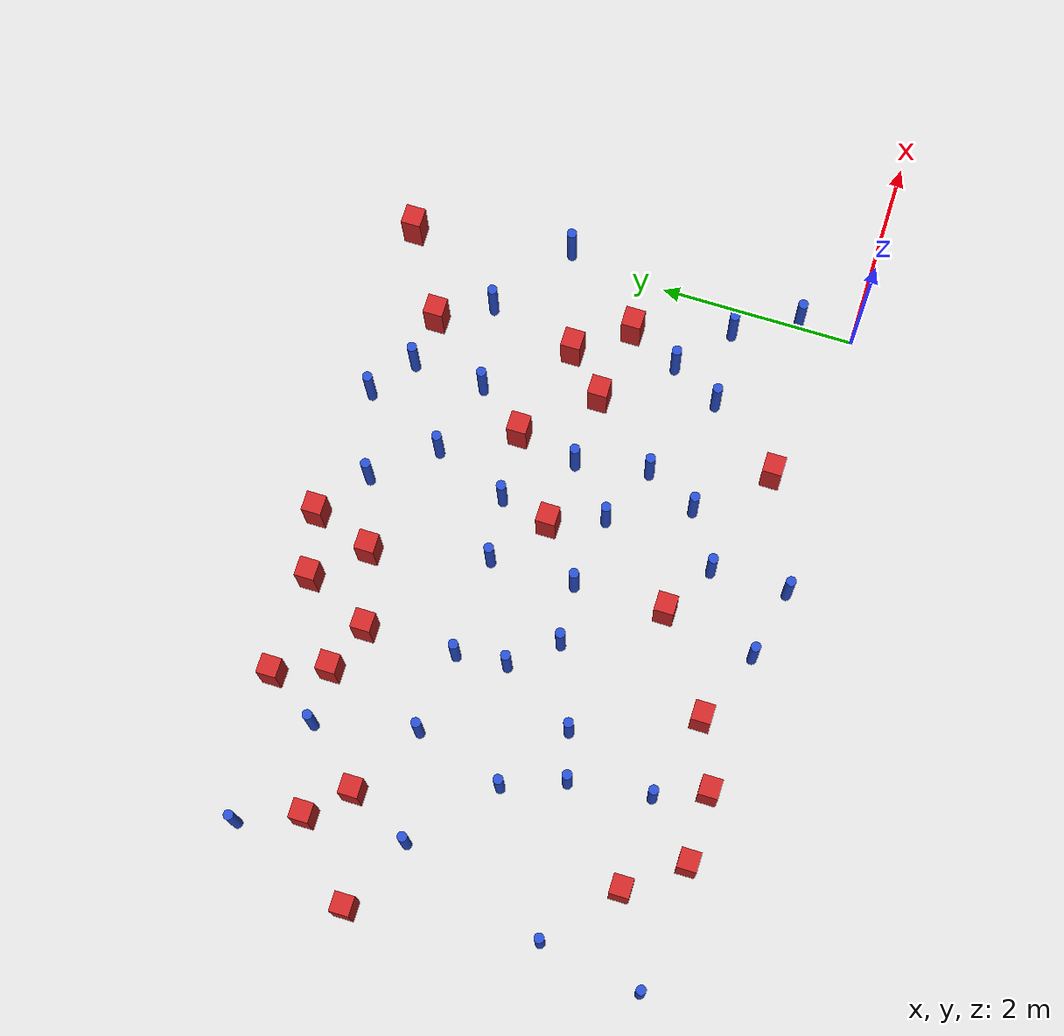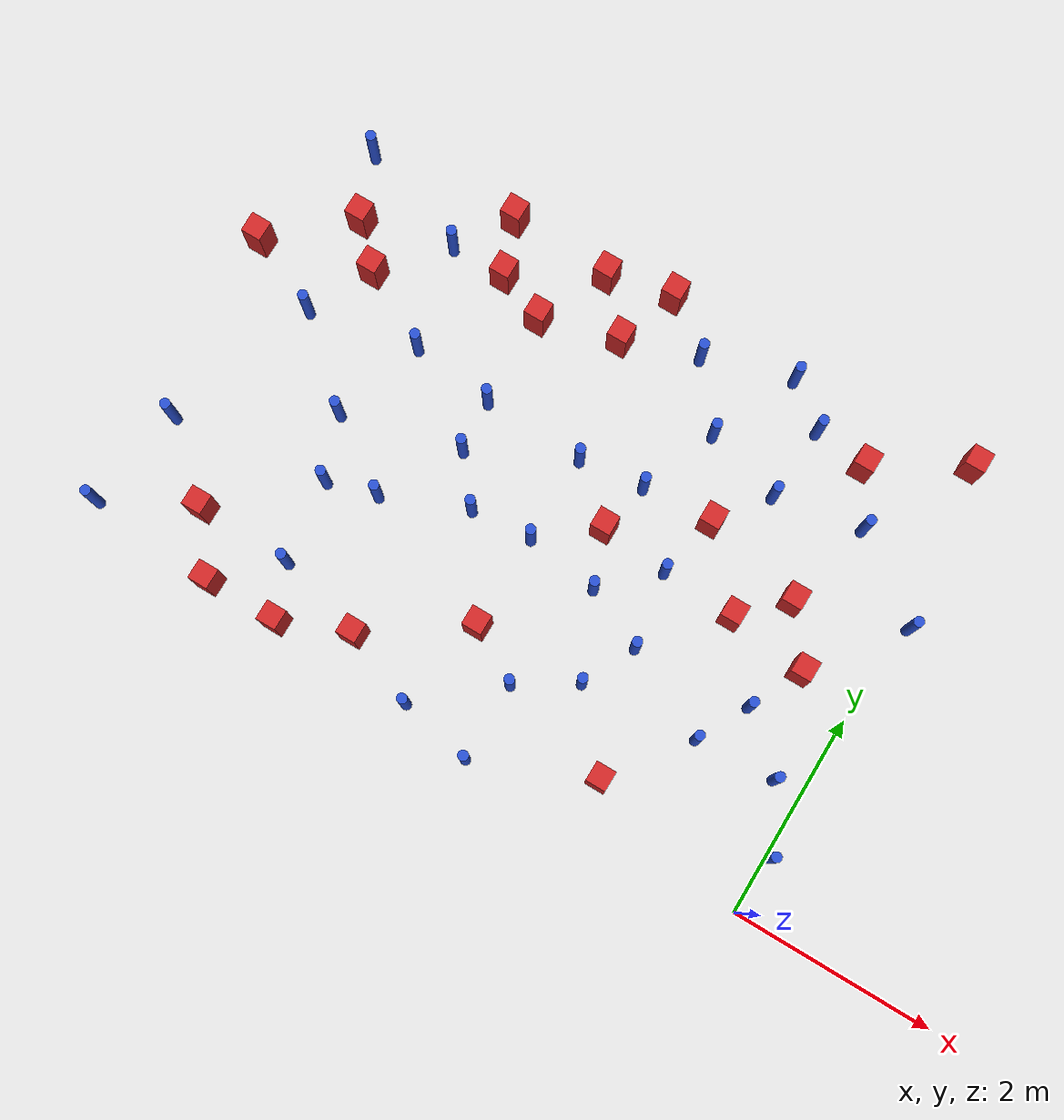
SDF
<sdf version="1.6">
 <model name="dense_95">
  <model name="pole_obstacle2">
   <static>true</static>
   <pose>-3.29904174645 2.82377356192 -9.47619616065e-06 5.49618799737e-07 2.36310414051e-07 -1.55090534807e-07</pose>
   <link name="link">
    <pose>0 0 0.3 0 -0 0</pose>
    <inertial>
     <mass>1</mass>
     <inertia><ixx>0.145833</ixx><ixy>0</ixy><ixz>0</ixz><iyy>0.145833</iyy><iyz>0</iyz><izz>0.125</izz></inertia>
    </inertial>
    <collision name="collision">
     <geometry><cylinder><radius>0.05</radius><length>.6</length></cylinder></geometry>
    </collision>
    <visual name="visual">
     <geometry><cylinder><radius>0.05</radius><length>.6</length></cylinder></geometry>
     <material>
      <script><name>Gazebo/Blue</name><uri>file://media/materials/scripts/gazebo.material</uri></script>
     </material>
    </visual>
   </link>
  </model>
  <model name="pole_obstacle6">
   <static>true</static>
   <pose>0.0274219463707 0.570744729597 -9.47619616065e-06 5.49618799737e-07 2.36310414052e-07 -1.55090534805e-07</pose>
   <link name="link">
    <pose>0 0 0.3 0 -0 0</pose>
    <inertial>
     <mass>1</mass>
     <inertia><ixx>0.145833</ixx><ixy>0</ixy><ixz>0</ixz><iyy>0.145833</iyy><iyz>0</iyz><izz>0.125</izz></inertia>
    </inertial>
    <collision name="collision">
     <geometry><cylinder><radius>0.05</radius><length>.6</length></cylinder></geometry>
    </collision>
    <visual name="visual">
     <geometry><cylinder><radius>0.05</radius><length>.6</length></cylinder></geometry>
     <material>
      <script><name>Gazebo/Blue</name><uri>file://media/materials/scripts/gazebo.material</uri></script>
     </material>
    </visual>
   </link>
  </model>
  <model name="square_post_obstacle2">
   <static>true</static>
   <pose>-0.159925843453 4.62938258808 -6.11067671241e-07 -5.50515727128e-06 -8.79689657224e-07 2.37013304536e-05</pose>
   <link name="link">
    <pose>0 0 0.25 0 -0 0</pose>
    <inertial>
     <mass>100</mass>
     <inertia>
      <ixx>0.166667</ixx>
      <ixy>0</ixy>
      <ixz>0</ixz>
      <iyy>0.166667</iyy>
      <iyz>0</iyz>
      <izz>0.166667</izz>
     </inertia>
    </inertial>
    <collision name="collision"><geometry><box><size>.2 .2 .5</size></box></geometry></collision>
    <visual name="visual">
     <geometry><box><size>.2 .2 .5</size></box></geometry>
     <material>
      <script><name>Gazebo/Red</name><uri>file://media/materials/scripts/gazebo.material</uri></script>
     </material>
    </visual>
   </link>
  </model>
  <model name="square_post_obstacle5">
   <static>true</static>
   <pose>-3.9854556067 4.46820223153 -6.11067671241e-07 -5.50515727128e-06 -8.79689657224e-07 2.37013304536e-05</pose>
   <link name="link">
    <pose>0 0 0.25 0 -0 0</pose>
    <inertial>
     <mass>100</mass>
     <inertia>
      <ixx>0.166667</ixx>
      <ixy>0</ixy>
      <ixz>0</ixz>
      <iyy>0.166667</iyy>
      <iyz>0</iyz>
      <izz>0.166667</izz>
     </inertia>
    </inertial>
    <collision name="collision"><geometry><box><size>.2 .2 .5</size></box></geometry></collision>
    <visual name="visual">
     <geometry><box><size>.2 .2 .5</size></box></geometry>
     <material>
      <script><name>Gazebo/Red</name><uri>file://media/materials/scripts/gazebo.material</uri></script>
     </material>
    </visual>
   </link>
  </model>
  <model name="pole_obstacle14">
   <static>true</static>
   <pose>-2.76724626899 0.704654740037 -9.47619616065e-06 5.49618799738e-07 2.36310414075e-07 -1.55090534793e-07</pose>
   <link name="link">
    <pose>0 0 0.3 0 -0 0</pose>
    <inertial>
     <mass>1</mass>
     <inertia><ixx>0.145833</ixx><ixy>0</ixy><ixz>0</ixz><iyy>0.145833</iyy><iyz>0</iyz><izz>0.125</izz></inertia>
    </inertial>
    <collision name="collision">
     <geometry><cylinder><radius>0.05</radius><length>.6</length></cylinder></geometry>
    </collision>
    <visual name="visual">
     <geometry><cylinder><radius>0.05</radius><length>.6</length></cylinder></geometry>
     <material>
      <script><name>Gazebo/Blue</name><uri>file://media/materials/scripts/gazebo.material</uri></script>
     </material>
    </visual>
   </link>
  </model>
  <model name="pole_obstacle23">
   <static>true</static>
   <pose>-1.97185046986 4.5103314943 -9.47619616065e-06 5.49618799737e-07 2.36310414064e-07 -1.55090534797e-07</pose>
   <link name="link">
    <pose>0 0 0.3 0 -0 0</pose>
    <inertial>
     <mass>1</mass>
     <inertia><ixx>0.145833</ixx><ixy>0</ixy><ixz>0</ixz><iyy>0.145833</iyy><iyz>0</iyz><izz>0.125</izz></inertia>
    </inertial>
    <collision name="collision">
     <geometry><cylinder><radius>0.05</radius><length>.6</length></cylinder></geometry>
    </collision>
    <visual name="visual">
     <geometry><cylinder><radius>0.05</radius><length>.6</length></cylinder></geometry>
     <material>
      <script><name>Gazebo/Blue</name><uri>file://media/materials/scripts/gazebo.material</uri></script>
     </material>
    </visual>
   </link>
  </model>
  <model name="square_post_obstacle21">
   <static>true</static>
   <pose>-4.89767449202 0.111727149782 -6.11067671241e-07 -5.50515727128e-06 -8.79689657224e-07 2.37013304536e-05</pose>
   <link name="link">
    <pose>0 0 0.25 0 -0 0</pose>
    <inertial>
     <mass>100</mass>
     <inertia>
      <ixx>0.166667</ixx>
      <ixy>0</ixy>
      <ixz>0</ixz>
      <iyy>0.166667</iyy>
      <iyz>0</iyz>
      <izz>0.166667</izz>
     </inertia>
    </inertial>
    <collision name="collision"><geometry><box><size>.2 .2 .5</size></box></geometry></collision>
    <visual name="visual">
     <geometry><box><size>.2 .2 .5</size></box></geometry>
     <material>
      <script><name>Gazebo/Red</name><uri>file://media/materials/scripts/gazebo.material</uri></script>
     </material>
    </visual>
   </link>
  </model>
  <model name="square_post_obstacle25">
   <static>true</static>
   <pose>-6.24185374279 3.75734266402 -6.11067671241e-07 -5.50515727128e-06 -8.79689657224e-07 2.37013304536e-05</pose>
   <link name="link">
    <pose>0 0 0.25 0 -0 0</pose>
    <inertial>
     <mass>100</mass>
     <inertia>
      <ixx>0.166667</ixx>
      <ixy>0</ixy>
      <ixz>0</ixz>
      <iyy>0.166667</iyy>
      <iyz>0</iyz>
      <izz>0.166667</izz>
     </inertia>
    </inertial>
    <collision name="collision"><geometry><box><size>.2 .2 .5</size></box></geometry></collision>
    <visual name="visual">
     <geometry><box><size>.2 .2 .5</size></box></geometry>
     <material>
      <script><name>Gazebo/Red</name><uri>file://media/materials/scripts/gazebo.material</uri></script>
     </material>
    </visual>
   </link>
  </model>
  <model name="square_post_obstacle29">
   <static>true</static>
   <pose>-3.33987273103 4.61689935057 -6.11067671241e-07 -5.50515727128e-06 -8.79689657224e-07 2.37013304536e-05</pose>
   <link name="link">
    <pose>0 0 0.25 0 -0 0</pose>
    <inertial>
     <mass>100</mass>
     <inertia>
      <ixx>0.166667</ixx>
      <ixy>0</ixy>
      <ixz>0</ixz>
      <iyy>0.166667</iyy>
      <iyz>0</iyz>
      <izz>0.166667</izz>
     </inertia>
    </inertial>
    <collision name="collision"><geometry><box><size>.2 .2 .5</size></box></geometry></collision>
    <visual name="visual">
     <geometry><box><size>.2 .2 .5</size></box></geometry>
     <material>
      <script><name>Gazebo/Red</name><uri>file://media/materials/scripts/gazebo.material</uri></script>
     </material>
    </visual>
   </link>
  </model>
  <model name="square_post_obstacle30">
   <static>true</static>
   <pose>-0.958676364007 2.68689497019 -6.11067671241e-07 -5.50515727128e-06 -8.79689657224e-07 2.37013304536e-05</pose>
   <link name="link">
    <pose>0 0 0.25 0 -0 0</pose>
    <inertial>
     <mass>100</mass>
     <inertia>
      <ixx>0.166667</ixx>
      <ixy>0</ixy>
      <ixz>0</ixz>
      <iyy>0.166667</iyy>
      <iyz>0</iyz>
      <izz>0.166667</izz>
     </inertia>
    </inertial>
    <collision name="collision"><geometry><box><size>.2 .2 .5</size></box></geometry></collision>
    <visual name="visual">
     <geometry><box><size>.2 .2 .5</size></box></geometry>
     <material>
      <script><name>Gazebo/Red</name><uri>file://media/materials/scripts/gazebo.material</uri></script>
     </material>
    </visual>
   </link>
  </model>
  <model name="square_post_obstacle31">
   <static>true</static>
   <pose>-0.568517137609 2.16866921524 -6.11067671241e-07 -5.50515727128e-06 -8.79689657224e-07 2.37013304536e-05</pose>
   <link name="link">
    <pose>0 0 0.25 0 -0 0</pose>
    <inertial>
     <mass>100</mass>
     <inertia>
      <ixx>0.166667</ixx>
      <ixy>0</ixy>
      <ixz>0</ixz>
      <iyy>0.166667</iyy>
      <iyz>0</iyz>
      <izz>0.166667</izz>
     </inertia>
    </inertial>
    <collision name="collision"><geometry><box><size>.2 .2 .5</size></box></geometry></collision>
    <visual name="visual">
     <geometry><box><size>.2 .2 .5</size></box></geometry>
     <material>
      <script><name>Gazebo/Red</name><uri>file://media/materials/scripts/gazebo.material</uri></script>
     </material>
    </visual>
   </link>
  </model>
  <model name="pole_obstacle46">
   <static>true</static>
   <pose>-2.57049573311 1.85014841791 -9.47619616065e-06 5.49618799737e-07 2.36310414072e-07 -1.55090534793e-07</pose>
   <link name="link">
    <pose>0 0 0.3 0 -0 0</pose>
    <inertial>
     <mass>1</mass>
     <inertia><ixx>0.145833</ixx><ixy>0</ixy><ixz>0</ixz><iyy>0.145833</iyy><iyz>0</iyz><izz>0.125</izz></inertia>
    </inertial>
    <collision name="collision">
     <geometry><cylinder><radius>0.05</radius><length>.6</length></cylinder></geometry>
    </collision>
    <visual name="visual">
     <geometry><cylinder><radius>0.05</radius><length>.6</length></cylinder></geometry>
     <material>
      <script><name>Gazebo/Blue</name><uri>file://media/materials/scripts/gazebo.material</uri></script>
     </material>
    </visual>
   </link>
  </model>
  <model name="pole_obstacle48">
   <static>true</static>
   <pose>-2.83331847792 4.24327522767 -9.47619616065e-06 5.49618799738e-07 2.3631041406e-07 -1.55090534801e-07</pose>
   <link name="link">
    <pose>0 0 0.3 0 -0 0</pose>
    <inertial>
     <mass>1</mass>
     <inertia><ixx>0.145833</ixx><ixy>0</ixy><ixz>0</ixz><iyy>0.145833</iyy><iyz>0</iyz><izz>0.125</izz></inertia>
    </inertial>
    <collision name="collision">
     <geometry><cylinder><radius>0.05</radius><length>.6</length></cylinder></geometry>
    </collision>
    <visual name="visual">
     <geometry><cylinder><radius>0.05</radius><length>.6</length></cylinder></geometry>
     <material>
      <script><name>Gazebo/Blue</name><uri>file://media/materials/scripts/gazebo.material</uri></script>
     </material>
    </visual>
   </link>
  </model>
  <model name="square_post_obstacle42">
   <static>true</static>
   <pose>-1.63854573502 0.395395373485 -6.11067671241e-07 -5.50515727128e-06 -8.79689657224e-07 2.37013304536e-05</pose>
   <link name="link">
    <pose>0 0 0.25 0 -0 0</pose>
    <inertial>
     <mass>100</mass>
     <inertia>
      <ixx>0.166667</ixx>
      <ixy>0</ixy>
      <ixz>0</ixz>
      <iyy>0.166667</iyy>
      <iyz>0</iyz>
      <izz>0.166667</izz>
     </inertia>
    </inertial>
    <collision name="collision"><geometry><box><size>.2 .2 .5</size></box></geometry></collision>
    <visual name="visual">
     <geometry><box><size>.2 .2 .5</size></box></geometry>
     <material>
      <script><name>Gazebo/Red</name><uri>file://media/materials/scripts/gazebo.material</uri></script>
     </material>
    </visual>
   </link>
  </model>
  <model name="pole_obstacle61">
   <static>true</static>
   <pose>-5.20028227913 1.44340238059 -9.47619616065e-06 5.49618799738e-07 2.36310414071e-07 -1.55090534796e-07</pose>
   <link name="link">
    <pose>0 0 0.3 0 -0 0</pose>
    <inertial>
     <mass>1</mass>
     <inertia><ixx>0.145833</ixx><ixy>0</ixy><ixz>0</ixz><iyy>0.145833</iyy><iyz>0</iyz><izz>0.125</izz></inertia>
    </inertial>
    <collision name="collision">
     <geometry><cylinder><radius>0.05</radius><length>.6</length></cylinder></geometry>
    </collision>
    <visual name="visual">
     <geometry><cylinder><radius>0.05</radius><length>.6</length></cylinder></geometry>
     <material>
      <script><name>Gazebo/Blue</name><uri>file://media/materials/scripts/gazebo.material</uri></script>
     </material>
    </visual>
   </link>
  </model>
  <model name="pole_obstacle64">
   <static>true</static>
   <pose>-1.9675932244 1.57581590829 -9.47619616065e-06 5.49618799737e-07 2.36310414056e-07 -1.55090534802e-07</pose>
   <link name="link">
    <pose>0 0 0.3 0 -0 0</pose>
    <inertial>
     <mass>1</mass>
     <inertia><ixx>0.145833</ixx><ixy>0</ixy><ixz>0</ixz><iyy>0.145833</iyy><iyz>0</iyz><izz>0.125</izz></inertia>
    </inertial>
    <collision name="collision">
     <geometry><cylinder><radius>0.05</radius><length>.6</length></cylinder></geometry>
    </collision>
    <visual name="visual">
     <geometry><cylinder><radius>0.05</radius><length>.6</length></cylinder></geometry>
     <material>
      <script><name>Gazebo/Blue</name><uri>file://media/materials/scripts/gazebo.material</uri></script>
     </material>
    </visual>
   </link>
  </model>
  <model name="pole_obstacle67">
   <static>true</static>
   <pose>-6.21090369616 2.75168642242 -9.47619616065e-06 5.49618799738e-07 2.36310414051e-07 -1.55090534805e-07</pose>
   <link name="link">
    <pose>0 0 0.3 0 -0 0</pose>
    <inertial>
     <mass>1</mass>
     <inertia><ixx>0.145833</ixx><ixy>0</ixy><ixz>0</ixz><iyy>0.145833</iyy><iyz>0</iyz><izz>0.125</izz></inertia>
    </inertial>
    <collision name="collision">
     <geometry><cylinder><radius>0.05</radius><length>.6</length></cylinder></geometry>
    </collision>
    <visual name="visual">
     <geometry><cylinder><radius>0.05</radius><length>.6</length></cylinder></geometry>
     <material>
      <script><name>Gazebo/Blue</name><uri>file://media/materials/scripts/gazebo.material</uri></script>
     </material>
    </visual>
   </link>
  </model>
  <model name="pole_obstacle68">
   <static>true</static>
   <pose>-1.54842538107 4.18333602211 -9.47619616065e-06 5.49618799737e-07 2.36310414061e-07 -1.550905348e-07</pose>
   <link name="link">
    <pose>0 0 0.3 0 -0 0</pose>
    <inertial>
     <mass>1</mass>
     <inertia><ixx>0.145833</ixx><ixy>0</ixy><ixz>0</ixz><iyy>0.145833</iyy><iyz>0</iyz><izz>0.125</izz></inertia>
    </inertial>
    <collision name="collision">
     <geometry><cylinder><radius>0.05</radius><length>.6</length></cylinder></geometry>
    </collision>
    <visual name="visual">
     <geometry><cylinder><radius>0.05</radius><length>.6</length></cylinder></geometry>
     <material>
      <script><name>Gazebo/Blue</name><uri>file://media/materials/scripts/gazebo.material</uri></script>
     </material>
    </visual>
   </link>
  </model>
  <model name="pole_obstacle76">
   <static>true</static>
   <pose>-2.35872600278 3.66167079802 -9.47619616065e-06 5.49618799737e-07 2.36310414051e-07 -1.55090534807e-07</pose>
   <link name="link">
    <pose>0 0 0.3 0 -0 0</pose>
    <inertial>
     <mass>1</mass>
     <inertia><ixx>0.145833</ixx><ixy>0</ixy><ixz>0</ixz><iyy>0.145833</iyy><iyz>0</iyz><izz>0.125</izz></inertia>
    </inertial>
    <collision name="collision">
     <geometry><cylinder><radius>0.05</radius><length>.6</length></cylinder></geometry>
    </collision>
    <visual name="visual">
     <geometry><cylinder><radius>0.05</radius><length>.6</length></cylinder></geometry>
     <material>
      <script><name>Gazebo/Blue</name><uri>file://media/materials/scripts/gazebo.material</uri></script>
     </material>
    </visual>
   </link>
  </model>
  <model name="square_post_obstacle68">
   <static>true</static>
   <pose>-5.88368267943 3.38501373455 -6.11067671241e-07 -5.50515727128e-06 -8.79689657224e-07 2.37013304536e-05</pose>
   <link name="link">
    <pose>0 0 0.25 0 -0 0</pose>
    <inertial>
     <mass>100</mass>
     <inertia>
      <ixx>0.166667</ixx>
      <ixy>0</ixy>
      <ixz>0</ixz>
      <iyy>0.166667</iyy>
      <iyz>0</iyz>
      <izz>0.166667</izz>
     </inertia>
    </inertial>
    <collision name="collision"><geometry><box><size>.2 .2 .5</size></box></geometry></collision>
    <visual name="visual">
     <geometry><box><size>.2 .2 .5</size></box></geometry>
     <material>
      <script><name>Gazebo/Red</name><uri>file://media/materials/scripts/gazebo.material</uri></script>
     </material>
    </visual>
   </link>
  </model>
  <model name="pole_obstacle89">
   <static>true</static>
   <pose>-3.49032137935 0.0715964662466 -9.47619616065e-06 5.49618799737e-07 2.36310414028e-07 -1.55090534822e-07</pose>
   <link name="link">
    <pose>0 0 0.3 0 -0 0</pose>
    <inertial>
     <mass>1</mass>
     <inertia><ixx>0.145833</ixx><ixy>0</ixy><ixz>0</ixz><iyy>0.145833</iyy><iyz>0</iyz><izz>0.125</izz></inertia>
    </inertial>
    <collision name="collision">
     <geometry><cylinder><radius>0.05</radius><length>.6</length></cylinder></geometry>
    </collision>
    <visual name="visual">
     <geometry><cylinder><radius>0.05</radius><length>.6</length></cylinder></geometry>
     <material>
      <script><name>Gazebo/Blue</name><uri>file://media/materials/scripts/gazebo.material</uri></script>
     </material>
    </visual>
   </link>
  </model>
  <model name="square_post_obstacle86">
   <static>true</static>
   <pose>-6.96056548195 3.10820030166 -6.11067671241e-07 -5.50515727128e-06 -8.79689657224e-07 2.37013304536e-05</pose>
   <link name="link">
    <pose>0 0 0.25 0 -0 0</pose>
    <inertial>
     <mass>100</mass>
     <inertia>
      <ixx>0.166667</ixx>
      <ixy>0</ixy>
      <ixz>0</ixz>
      <iyy>0.166667</iyy>
      <iyz>0</iyz>
      <izz>0.166667</izz>
     </inertia>
    </inertial>
    <collision name="collision"><geometry><box><size>.2 .2 .5</size></box></geometry></collision>
    <visual name="visual">
     <geometry><box><size>.2 .2 .5</size></box></geometry>
     <material>
      <script><name>Gazebo/Red</name><uri>file://media/materials/scripts/gazebo.material</uri></script>
     </material>
    </visual>
   </link>
  </model>
  <model name="pole_obstacle97">
   <static>true</static>
   <pose>-6.73394681827 1.24381692508 -9.47619616065e-06 5.49618799738e-07 2.36310414071e-07 -1.55090534796e-07</pose>
   <link name="link">
    <pose>0 0 0.3 0 -0 0</pose>
    <inertial>
     <mass>1</mass>
     <inertia><ixx>0.145833</ixx><ixy>0</ixy><ixz>0</ixz><iyy>0.145833</iyy><iyz>0</iyz><izz>0.125</izz></inertia>
    </inertial>
    <collision name="collision">
     <geometry><cylinder><radius>0.05</radius><length>.6</length></cylinder></geometry>
    </collision>
    <visual name="visual">
     <geometry><cylinder><radius>0.05</radius><length>.6</length></cylinder></geometry>
     <material>
      <script><name>Gazebo/Blue</name><uri>file://media/materials/scripts/gazebo.material</uri></script>
     </material>
    </visual>
   </link>
  </model>
  <model name="square_post_obstacle92">
   <static>true</static>
   <pose>-3.55744458222 3.99997113632 -6.11067671241e-07 -5.50515727128e-06 -8.79689657224e-07 2.37013304536e-05</pose>
   <link name="link">
    <pose>0 0 0.25 0 -0 0</pose>
    <inertial>
     <mass>100</mass>
     <inertia>
      <ixx>0.166667</ixx>
      <ixy>0</ixy>
      <ixz>0</ixz>
      <iyy>0.166667</iyy>
      <iyz>0</iyz>
      <izz>0.166667</izz>
     </inertia>
    </inertial>
    <collision name="collision"><geometry><box><size>.2 .2 .5</size></box></geometry></collision>
    <visual name="visual">
     <geometry><box><size>.2 .2 .5</size></box></geometry>
     <material>
      <script><name>Gazebo/Red</name><uri>file://media/materials/scripts/gazebo.material</uri></script>
     </material>
    </visual>
   </link>
  </model>
  <model name="pole_obstacle101">
   <static>true</static>
   <pose>-5.4318687389 2.05385874134 -9.47619616065e-06 5.49618799738e-07 2.36310414051e-07 -1.55090534805e-07</pose>
   <link name="link">
    <pose>0 0 0.3 0 -0 0</pose>
    <inertial>
     <mass>1</mass>
     <inertia><ixx>0.145833</ixx><ixy>0</ixy><ixz>0</ixz><iyy>0.145833</iyy><iyz>0</iyz><izz>0.125</izz></inertia>
    </inertial>
    <collision name="collision">
     <geometry><cylinder><radius>0.05</radius><length>.6</length></cylinder></geometry>
    </collision>
    <visual name="visual">
     <geometry><cylinder><radius>0.05</radius><length>.6</length></cylinder></geometry>
     <material>
      <script><name>Gazebo/Blue</name><uri>file://media/materials/scripts/gazebo.material</uri></script>
     </material>
    </visual>
   </link>
  </model>
  <model name="square_post_obstacle94">
   <static>true</static>
   <pose>-3.30065545411 1.02063417165 -6.11067671241e-07 -5.50515727128e-06 -8.79689657224e-07 2.37013304536e-05</pose>
   <link name="link">
    <pose>0 0 0.25 0 -0 0</pose>
    <inertial>
     <mass>100</mass>
     <inertia>
      <ixx>0.166667</ixx>
      <ixy>0</ixy>
      <ixz>0</ixz>
      <iyy>0.166667</iyy>
      <iyz>0</iyz>
      <izz>0.166667</izz>
     </inertia>
    </inertial>
    <collision name="collision"><geometry><box><size>.2 .2 .5</size></box></geometry></collision>
    <visual name="visual">
     <geometry><box><size>.2 .2 .5</size></box></geometry>
     <material>
      <script><name>Gazebo/Red</name><uri>file://media/materials/scripts/gazebo.material</uri></script>
     </material>
    </visual>
   </link>
  </model>
  <model name="square_post_obstacle102">
   <static>true</static>
   <pose>-6.03837485008 0.652645354887 -6.11067671241e-07 -5.50515727128e-06 -8.79689657224e-07 2.37013304536e-05</pose>
   <link name="link">
    <pose>0 0 0.25 0 -0 0</pose>
    <inertial>
     <mass>100</mass>
     <inertia>
      <ixx>0.166667</ixx>
      <ixy>0</ixy>
      <ixz>0</ixz>
      <iyy>0.166667</iyy>
      <iyz>0</iyz>
      <izz>0.166667</izz>
     </inertia>
    </inertial>
    <collision name="collision"><geometry><box><size>.2 .2 .5</size></box></geometry></collision>
    <visual name="visual">
     <geometry><box><size>.2 .2 .5</size></box></geometry>
     <material>
      <script><name>Gazebo/Red</name><uri>file://media/materials/scripts/gazebo.material</uri></script>
     </material>
    </visual>
   </link>
  </model>
  <model name="pole_obstacle109">
   <static>true</static>
   <pose>-5.37035070303 3.97853645953 -9.47619616065e-06 5.49618799737e-07 2.36310414054e-07 -1.55090534804e-07</pose>
   <link name="link">
    <pose>0 0 0.3 0 -0 0</pose>
    <inertial>
     <mass>1</mass>
     <inertia><ixx>0.145833</ixx><ixy>0</ixy><ixz>0</ixz><iyy>0.145833</iyy><iyz>0</iyz><izz>0.125</izz></inertia>
    </inertial>
    <collision name="collision">
     <geometry><cylinder><radius>0.05</radius><length>.6</length></cylinder></geometry>
    </collision>
    <visual name="visual">
     <geometry><cylinder><radius>0.05</radius><length>.6</length></cylinder></geometry>
     <material>
      <script><name>Gazebo/Blue</name><uri>file://media/materials/scripts/gazebo.material</uri></script>
     </material>
    </visual>
   </link>
  </model>
  <model name="square_post_obstacle103">
   <static>true</static>
   <pose>-1.02268616664 4.1152326225 -6.11067671241e-07 -5.50515727128e-06 -8.79689657224e-07 2.37013304536e-05</pose>
   <link name="link">
    <pose>0 0 0.25 0 -0 0</pose>
    <inertial>
     <mass>100</mass>
     <inertia>
      <ixx>0.166667</ixx>
      <ixy>0</ixy>
      <ixz>0</ixz>
      <iyy>0.166667</iyy>
      <iyz>0</iyz>
      <izz>0.166667</izz>
     </inertia>
    </inertial>
    <collision name="collision"><geometry><box><size>.2 .2 .5</size></box></geometry></collision>
    <visual name="visual">
     <geometry><box><size>.2 .2 .5</size></box></geometry>
     <material>
      <script><name>Gazebo/Red</name><uri>file://media/materials/scripts/gazebo.material</uri></script>
     </material>
    </visual>
   </link>
  </model>
  <model name="square_post_obstacle105">
   <static>true</static>
   <pose>-4.22629305797 0.378609148374 -6.11067671241e-07 -5.50515727128e-06 -8.79689657224e-07 2.37013304536e-05</pose>
   <link name="link">
    <pose>0 0 0.25 0 -0 0</pose>
    <inertial>
     <mass>100</mass>
     <inertia>
      <ixx>0.166667</ixx>
      <ixy>0</ixy>
      <ixz>0</ixz>
      <iyy>0.166667</iyy>
      <iyz>0</iyz>
      <izz>0.166667</izz>
     </inertia>
    </inertial>
    <collision name="collision"><geometry><box><size>.2 .2 .5</size></box></geometry></collision>
    <visual name="visual">
     <geometry><box><size>.2 .2 .5</size></box></geometry>
     <material>
      <script><name>Gazebo/Red</name><uri>file://media/materials/scripts/gazebo.material</uri></script>
     </material>
    </visual>
   </link>
  </model>
  <model name="square_post_obstacle115">
   <static>true</static>
   <pose>-1.96049697644 2.94009619838 -6.11067671241e-07 -5.50515727128e-06 -8.79689657224e-07 2.37013304536e-05</pose>
   <link name="link">
    <pose>0 0 0.25 0 -0 0</pose>
    <inertial>
     <mass>100</mass>
     <inertia>
      <ixx>0.166667</ixx>
      <ixy>0</ixy>
      <ixz>0</ixz>
      <iyy>0.166667</iyy>
      <iyz>0</iyz>
      <izz>0.166667</izz>
     </inertia>
    </inertial>
    <collision name="collision"><geometry><box><size>.2 .2 .5</size></box></geometry></collision>
    <visual name="visual">
     <geometry><box><size>.2 .2 .5</size></box></geometry>
     <material>
      <script><name>Gazebo/Red</name><uri>file://media/materials/scripts/gazebo.material</uri></script>
     </material>
    </visual>
   </link>
  </model>
  <model name="square_post_obstacle120">
   <static>true</static>
   <pose>-1.36187176268 2.28369224164 -6.11067671241e-07 -5.50515727128e-06 -8.79689657224e-07 2.37013304536e-05</pose>
   <link name="link">
    <pose>0 0 0.25 0 -0 0</pose>
    <inertial>
     <mass>100</mass>
     <inertia>
      <ixx>0.166667</ixx>
      <ixy>0</ixy>
      <ixz>0</ixz>
      <iyy>0.166667</iyy>
      <iyz>0</iyz>
      <izz>0.166667</izz>
     </inertia>
    </inertial>
    <collision name="collision"><geometry><box><size>.2 .2 .5</size></box></geometry></collision>
    <visual name="visual">
     <geometry><box><size>.2 .2 .5</size></box></geometry>
     <material>
      <script><name>Gazebo/Red</name><uri>file://media/materials/scripts/gazebo.material</uri></script>
     </material>
    </visual>
   </link>
  </model>
  <model name="pole_obstacle126">
   <static>true</static>
   <pose>-0.813401729144 1.64431922863 -9.47619616065e-06 5.49618799738e-07 2.36310414061e-07 -1.55090534801e-07</pose>
   <link name="link">
    <pose>0 0 0.3 0 -0 0</pose>
    <inertial>
     <mass>1</mass>
     <inertia><ixx>0.145833</ixx><ixy>0</ixy><ixz>0</ixz><iyy>0.145833</iyy><iyz>0</iyz><izz>0.125</izz></inertia>
    </inertial>
    <collision name="collision">
     <geometry><cylinder><radius>0.05</radius><length>.6</length></cylinder></geometry>
    </collision>
    <visual name="visual">
     <geometry><cylinder><radius>0.05</radius><length>.6</length></cylinder></geometry>
     <material>
      <script><name>Gazebo/Blue</name><uri>file://media/materials/scripts/gazebo.material</uri></script>
     </material>
    </visual>
   </link>
  </model>
  <model name="square_post_obstacle122">
   <static>true</static>
   <pose>-4.31789929335 3.78424721537 -6.11067671241e-07 -5.50515727128e-06 -8.79689657224e-07 2.37013304536e-05</pose>
   <link name="link">
    <pose>0 0 0.25 0 -0 0</pose>
    <inertial>
     <mass>100</mass>
     <inertia>
      <ixx>0.166667</ixx>
      <ixy>0</ixy>
      <ixz>0</ixz>
      <iyy>0.166667</iyy>
      <iyz>0</iyz>
      <izz>0.166667</izz>
     </inertia>
    </inertial>
    <collision name="collision"><geometry><box><size>.2 .2 .5</size></box></geometry></collision>
    <visual name="visual">
     <geometry><box><size>.2 .2 .5</size></box></geometry>
     <material>
      <script><name>Gazebo/Red</name><uri>file://media/materials/scripts/gazebo.material</uri></script>
     </material>
    </visual>
   </link>
  </model>
  <model name="pole_obstacle127">
   <static>true</static>
   <pose>-5.14111896402 2.9665598119 -9.47619616065e-06 5.49618799738e-07 2.36310414051e-07 -1.55090534805e-07</pose>
   <link name="link">
    <pose>0 0 0.3 0 -0 0</pose>
    <inertial>
     <mass>1</mass>
     <inertia><ixx>0.145833</ixx><ixy>0</ixy><ixz>0</ixz><iyy>0.145833</iyy><iyz>0</iyz><izz>0.125</izz></inertia>
    </inertial>
    <collision name="collision">
     <geometry><cylinder><radius>0.05</radius><length>.6</length></cylinder></geometry>
    </collision>
    <visual name="visual">
     <geometry><cylinder><radius>0.05</radius><length>.6</length></cylinder></geometry>
     <material>
      <script><name>Gazebo/Blue</name><uri>file://media/materials/scripts/gazebo.material</uri></script>
     </material>
    </visual>
   </link>
  </model>
  <model name="pole_obstacle128">
   <static>true</static>
   <pose>-4.31197705896 2.86059861686 -9.47619616065e-06 5.49618799738e-07 2.36310414051e-07 -1.55090534805e-07</pose>
   <link name="link">
    <pose>0 0 0.3 0 -0 0</pose>
    <inertial>
     <mass>1</mass>
     <inertia><ixx>0.145833</ixx><ixy>0</ixy><ixz>0</ixz><iyy>0.145833</iyy><iyz>0</iyz><izz>0.125</izz></inertia>
    </inertial>
    <collision name="collision">
     <geometry><cylinder><radius>0.05</radius><length>.6</length></cylinder></geometry>
    </collision>
    <visual name="visual">
     <geometry><cylinder><radius>0.05</radius><length>.6</length></cylinder></geometry>
     <material>
      <script><name>Gazebo/Blue</name><uri>file://media/materials/scripts/gazebo.material</uri></script>
     </material>
    </visual>
   </link>
  </model>
  <model name="pole_obstacle129">
   <static>true</static>
   <pose>-5.09949745526 0.617684358546 -9.47619616065e-06 5.49618799737e-07 2.36310414061e-07 -1.550905348e-07</pose>
   <link name="link">
    <pose>0 0 0.3 0 -0 0</pose>
    <inertial>
     <mass>1</mass>
     <inertia><ixx>0.145833</ixx><ixy>0</ixy><ixz>0</ixz><iyy>0.145833</iyy><iyz>0</iyz><izz>0.125</izz></inertia>
    </inertial>
    <collision name="collision">
     <geometry><cylinder><radius>0.05</radius><length>.6</length></cylinder></geometry>
    </collision>
    <visual name="visual">
     <geometry><cylinder><radius>0.05</radius><length>.6</length></cylinder></geometry>
     <material>
      <script><name>Gazebo/Blue</name><uri>file://media/materials/scripts/gazebo.material</uri></script>
     </material>
    </visual>
   </link>
  </model>
  <model name="pole_obstacle140">
   <static>true</static>
   <pose>-0.290588829813 1.1908427168 -9.47619616065e-06 5.49618799737e-07 2.36310414065e-07 -1.55090534797e-07</pose>
   <link name="link">
    <pose>0 0 0.3 0 -0 0</pose>
    <inertial>
     <mass>1</mass>
     <inertia><ixx>0.145833</ixx><ixy>0</ixy><ixz>0</ixz><iyy>0.145833</iyy><iyz>0</iyz><izz>0.125</izz></inertia>
    </inertial>
    <collision name="collision">
     <geometry><cylinder><radius>0.05</radius><length>.6</length></cylinder></geometry>
    </collision>
    <visual name="visual">
     <geometry><cylinder><radius>0.05</radius><length>.6</length></cylinder></geometry>
     <material>
      <script><name>Gazebo/Blue</name><uri>file://media/materials/scripts/gazebo.material</uri></script>
     </material>
    </visual>
   </link>
  </model>
  <model name="pole_obstacle148">
   <static>true</static>
   <pose>-6.91130225763 0.203133801507 -9.47619616065e-06 5.49618799737e-07 2.36310414071e-07 -1.55090534796e-07</pose>
   <link name="link">
    <pose>0 0 0.3 0 -0 0</pose>
    <inertial>
     <mass>1</mass>
     <inertia><ixx>0.145833</ixx><ixy>0</ixy><ixz>0</ixz><iyy>0.145833</iyy><iyz>0</iyz><izz>0.125</izz></inertia>
    </inertial>
    <collision name="collision">
     <geometry><cylinder><radius>0.05</radius><length>.6</length></cylinder></geometry>
    </collision>
    <visual name="visual">
     <geometry><cylinder><radius>0.05</radius><length>.6</length></cylinder></geometry>
     <material>
      <script><name>Gazebo/Blue</name><uri>file://media/materials/scripts/gazebo.material</uri></script>
     </material>
    </visual>
   </link>
  </model>
  <model name="pole_obstacle153">
   <static>true</static>
   <pose>-2.09194370085 2.31697124273 -9.47619616065e-06 5.49618799737e-07 2.36310414051e-07 -1.55090534807e-07</pose>
   <link name="link">
    <pose>0 0 0.3 0 -0 0</pose>
    <inertial>
     <mass>1</mass>
     <inertia><ixx>0.145833</ixx><ixy>0</ixy><ixz>0</ixz><iyy>0.145833</iyy><iyz>0</iyz><izz>0.125</izz></inertia>
    </inertial>
    <collision name="collision">
     <geometry><cylinder><radius>0.05</radius><length>.6</length></cylinder></geometry>
    </collision>
    <visual name="visual">
     <geometry><cylinder><radius>0.05</radius><length>.6</length></cylinder></geometry>
     <material>
      <script><name>Gazebo/Blue</name><uri>file://media/materials/scripts/gazebo.material</uri></script>
     </material>
    </visual>
   </link>
  </model>
  <model name="pole_obstacle156">
   <static>true</static>
   <pose>-4.26945105646 2.34597910854 -9.47619616065e-06 5.49618799738e-07 2.36310414051e-07 -1.55090534805e-07</pose>
   <link name="link">
    <pose>0 0 0.3 0 -0 0</pose>
    <inertial>
     <mass>1</mass>
     <inertia><ixx>0.145833</ixx><ixy>0</ixy><ixz>0</ixz><iyy>0.145833</iyy><iyz>0</iyz><izz>0.125</izz></inertia>
    </inertial>
    <collision name="collision">
     <geometry><cylinder><radius>0.05</radius><length>.6</length></cylinder></geometry>
    </collision>
    <visual name="visual">
     <geometry><cylinder><radius>0.05</radius><length>.6</length></cylinder></geometry>
     <material>
      <script><name>Gazebo/Blue</name><uri>file://media/materials/scripts/gazebo.material</uri></script>
     </material>
    </visual>
   </link>
  </model>
  <model name="square_post_obstacle163">
   <static>true</static>
   <pose>-5.00848437876 4.50561812445 -6.11067671241e-07 -5.50515727128e-06 -8.79689657224e-07 2.37013304536e-05</pose>
   <link name="link">
    <pose>0 0 0.25 0 -0 0</pose>
    <inertial>
     <mass>100</mass>
     <inertia>
      <ixx>0.166667</ixx>
      <ixy>0</ixy>
      <ixz>0</ixz>
      <iyy>0.166667</iyy>
      <iyz>0</iyz>
      <izz>0.166667</izz>
     </inertia>
    </inertial>
    <collision name="collision"><geometry><box><size>.2 .2 .5</size></box></geometry></collision>
    <visual name="visual">
     <geometry><box><size>.2 .2 .5</size></box></geometry>
     <material>
      <script><name>Gazebo/Red</name><uri>file://media/materials/scripts/gazebo.material</uri></script>
     </material>
    </visual>
   </link>
  </model>
  <model name="pole_obstacle172">
   <static>true</static>
   <pose>-2.76716996002 -0.0787259437785 -9.47619616065e-06 5.49618799737e-07 2.36310414066e-07 -1.55090534798e-07</pose>
   <link name="link">
    <pose>0 0 0.3 0 -0 0</pose>
    <inertial>
     <mass>1</mass>
     <inertia><ixx>0.145833</ixx><ixy>0</ixy><ixz>0</ixz><iyy>0.145833</iyy><iyz>0</iyz><izz>0.125</izz></inertia>
    </inertial>
    <collision name="collision">
     <geometry><cylinder><radius>0.05</radius><length>.6</length></cylinder></geometry>
    </collision>
    <visual name="visual">
     <geometry><cylinder><radius>0.05</radius><length>.6</length></cylinder></geometry>
     <material>
      <script><name>Gazebo/Blue</name><uri>file://media/materials/scripts/gazebo.material</uri></script>
     </material>
    </visual>
   </link>
  </model>
  <model name="pole_obstacle174">
   <static>true</static>
   <pose>-1.59430343515 3.44132957082 -9.47619616065e-06 5.49618799737e-07 2.36310414062e-07 -1.55090534798e-07</pose>
   <link name="link">
    <pose>0 0 0.3 0 -0 0</pose>
    <inertial>
     <mass>1</mass>
     <inertia><ixx>0.145833</ixx><ixy>0</ixy><ixz>0</ixz><iyy>0.145833</iyy><iyz>0</iyz><izz>0.125</izz></inertia>
    </inertial>
    <collision name="collision">
     <geometry><cylinder><radius>0.05</radius><length>.6</length></cylinder></geometry>
    </collision>
    <visual name="visual">
     <geometry><cylinder><radius>0.05</radius><length>.6</length></cylinder></geometry>
     <material>
      <script><name>Gazebo/Blue</name><uri>file://media/materials/scripts/gazebo.material</uri></script>
     </material>
    </visual>
   </link>
  </model>
  <model name="pole_obstacle176">
   <static>true</static>
   <pose>-2.21777355394 1.049823265 -9.4761961606e-06 5.49618799729e-07 2.36310413997e-07 -1.55090534826e-07</pose>
   <link name="link">
    <pose>0 0 0.3 0 -0 0</pose>
    <inertial>
     <mass>1</mass>
     <inertia><ixx>0.145833</ixx><ixy>0</ixy><ixz>0</ixz><iyy>0.145833</iyy><iyz>0</iyz><izz>0.125</izz></inertia>
    </inertial>
    <collision name="collision">
     <geometry><cylinder><radius>0.05</radius><length>.6</length></cylinder></geometry>
    </collision>
    <visual name="visual">
     <geometry><cylinder><radius>0.05</radius><length>.6</length></cylinder></geometry>
     <material>
      <script><name>Gazebo/Blue</name><uri>file://media/materials/scripts/gazebo.material</uri></script>
     </material>
    </visual>
   </link>
  </model>
  <model name="pole_obstacle182">
   <static>true</static>
   <pose>0.0822807602554 3.01439185473 -9.47619616065e-06 5.49618799737e-07 2.36310414059e-07 -1.550905348e-07</pose>
   <link name="link">
    <pose>0 0 0.3 0 -0 0</pose>
    <inertial>
     <mass>1</mass>
     <inertia><ixx>0.145833</ixx><ixy>0</ixy><ixz>0</ixz><iyy>0.145833</iyy><iyz>0</iyz><izz>0.125</izz></inertia>
    </inertial>
    <collision name="collision">
     <geometry><cylinder><radius>0.05</radius><length>.6</length></cylinder></geometry>
    </collision>
    <visual name="visual">
     <geometry><cylinder><radius>0.05</radius><length>.6</length></cylinder></geometry>
     <material>
      <script><name>Gazebo/Blue</name><uri>file://media/materials/scripts/gazebo.material</uri></script>
     </material>
    </visual>
   </link>
  </model>
  <model name="square_post_obstacle183">
   <static>true</static>
   <pose>-5.61983273582 0.111754612396 -6.11067671241e-07 -5.50515727128e-06 -8.79689657224e-07 2.37013304536e-05</pose>
   <link name="link">
    <pose>0 0 0.25 0 -0 0</pose>
    <inertial>
     <mass>100</mass>
     <inertia>
      <ixx>0.166667</ixx>
      <ixy>0</ixy>
      <ixz>0</ixz>
      <iyy>0.166667</iyy>
      <iyz>0</iyz>
      <izz>0.166667</izz>
     </inertia>
    </inertial>
    <collision name="collision"><geometry><box><size>.2 .2 .5</size></box></geometry></collision>
    <visual name="visual">
     <geometry><box><size>.2 .2 .5</size></box></geometry>
     <material>
      <script><name>Gazebo/Red</name><uri>file://media/materials/scripts/gazebo.material</uri></script>
     </material>
    </visual>
   </link>
  </model>
  <model name="pole_obstacle187">
   <static>true</static>
   <pose>-4.71827405342 1.57680718083 -9.47619616065e-06 5.49618799738e-07 2.36310414071e-07 -1.55090534796e-07</pose>
   <link name="link">
    <pose>0 0 0.3 0 -0 0</pose>
    <inertial>
     <mass>1</mass>
     <inertia><ixx>0.145833</ixx><ixy>0</ixy><ixz>0</ixz><iyy>0.145833</iyy><iyz>0</iyz><izz>0.125</izz></inertia>
    </inertial>
    <collision name="collision">
     <geometry><cylinder><radius>0.05</radius><length>.6</length></cylinder></geometry>
    </collision>
    <visual name="visual">
     <geometry><cylinder><radius>0.05</radius><length>.6</length></cylinder></geometry>
     <material>
      <script><name>Gazebo/Blue</name><uri>file://media/materials/scripts/gazebo.material</uri></script>
     </material>
    </visual>
   </link>
  </model>
  <model name="square_post_obstacle193">
   <static>true</static>
   <pose>-4.80711522259 3.9769359492 -6.11067671241e-07 -5.50515727128e-06 -8.79689657224e-07 2.37013304536e-05</pose>
   <link name="link">
    <pose>0 0 0.25 0 -0 0</pose>
    <inertial>
     <mass>100</mass>
     <inertia>
      <ixx>0.166667</ixx>
      <ixy>0</ixy>
      <ixz>0</ixz>
      <iyy>0.166667</iyy>
      <iyz>0</iyz>
      <izz>0.166667</izz>
     </inertia>
    </inertial>
    <collision name="collision"><geometry><box><size>.2 .2 .5</size></box></geometry></collision>
    <visual name="visual">
     <geometry><box><size>.2 .2 .5</size></box></geometry>
     <material>
      <script><name>Gazebo/Red</name><uri>file://media/materials/scripts/gazebo.material</uri></script>
     </material>
    </visual>
   </link>
  </model>
  <model name="pole_obstacle189">
   <static>true</static>
   <pose>-3.90697595322 1.90889621981 -9.47619616065e-06 5.49618799737e-07 2.36310414072e-07 -1.55090534793e-07</pose>
   <link name="link">
    <pose>0 0 0.3 0 -0 0</pose>
    <inertial>
     <mass>1</mass>
     <inertia><ixx>0.145833</ixx><ixy>0</ixy><ixz>0</ixz><iyy>0.145833</iyy><iyz>0</iyz><izz>0.125</izz></inertia>
    </inertial>
    <collision name="collision">
     <geometry><cylinder><radius>0.05</radius><length>.6</length></cylinder></geometry>
    </collision>
    <visual name="visual">
     <geometry><cylinder><radius>0.05</radius><length>.6</length></cylinder></geometry>
     <material>
      <script><name>Gazebo/Blue</name><uri>file://media/materials/scripts/gazebo.material</uri></script>
     </material>
    </visual>
   </link>
  </model>
  <model name="pole_obstacle196">
   <static>true</static>
   <pose>-2.65962691541 2.90005530496 -9.47619616065e-06 5.49618799737e-07 2.36310414051e-07 -1.55090534807e-07</pose>
   <link name="link">
    <pose>0 0 0.3 0 -0 0</pose>
    <inertial>
     <mass>1</mass>
     <inertia><ixx>0.145833</ixx><ixy>0</ixy><ixz>0</ixz><iyy>0.145833</iyy><iyz>0</iyz><izz>0.125</izz></inertia>
    </inertial>
    <collision name="collision">
     <geometry><cylinder><radius>0.05</radius><length>.6</length></cylinder></geometry>
    </collision>
    <visual name="visual">
     <geometry><cylinder><radius>0.05</radius><length>.6</length></cylinder></geometry>
     <material>
      <script><name>Gazebo/Blue</name><uri>file://media/materials/scripts/gazebo.material</uri></script>
     </material>
    </visual>
   </link>
  </model>
  <model name="pole_obstacle201">
   <static>true</static>
   <pose>-6.49161567323 4.37797875976 -9.47619616065e-06 5.49618799737e-07 2.36310414037e-07 -1.55090534814e-07</pose>
   <link name="link">
    <pose>0 0 0.3 0 -0 0</pose>
    <inertial>
     <mass>1</mass>
     <inertia><ixx>0.145833</ixx><ixy>0</ixy><ixz>0</ixz><iyy>0.145833</iyy><iyz>0</iyz><izz>0.125</izz></inertia>
    </inertial>
    <collision name="collision">
     <geometry><cylinder><radius>0.05</radius><length>.6</length></cylinder></geometry>
    </collision>
    <visual name="visual">
     <geometry><cylinder><radius>0.05</radius><length>.6</length></cylinder></geometry>
     <material>
      <script><name>Gazebo/Blue</name><uri>file://media/materials/scripts/gazebo.material</uri></script>
     </material>
    </visual>
   </link>
  </model>
  <model name="square_post_obstacle208">
   <static>true</static>
   <pose>-2.7770328008 2.38598740175 -6.11067671241e-07 -5.50515727128e-06 -8.79689657224e-07 2.37013304536e-05</pose>
   <link name="link">
    <pose>0 0 0.25 0 -0 0</pose>
    <inertial>
     <mass>100</mass>
     <inertia>
      <ixx>0.166667</ixx>
      <ixy>0</ixy>
      <ixz>0</ixz>
      <iyy>0.166667</iyy>
      <iyz>0</iyz>
      <izz>0.166667</izz>
     </inertia>
    </inertial>
    <collision name="collision"><geometry><box><size>.2 .2 .5</size></box></geometry></collision>
    <visual name="visual">
     <geometry><box><size>.2 .2 .5</size></box></geometry>
     <material>
      <script><name>Gazebo/Red</name><uri>file://media/materials/scripts/gazebo.material</uri></script>
     </material>
    </visual>
   </link>
  </model>
  <model name="pole_obstacle212">
   <static>true</static>
   <pose>-1.07552919543 1.14380666784 -9.47619616065e-06 5.49618799737e-07 2.36310414065e-07 -1.55090534798e-07</pose>
   <link name="link">
    <pose>0 0 0.3 0 -0 0</pose>
    <inertial>
     <mass>1</mass>
     <inertia><ixx>0.145833</ixx><ixy>0</ixy><ixz>0</ixz><iyy>0.145833</iyy><iyz>0</iyz><izz>0.125</izz></inertia>
    </inertial>
    <collision name="collision">
     <geometry><cylinder><radius>0.05</radius><length>.6</length></cylinder></geometry>
    </collision>
    <visual name="visual">
     <geometry><cylinder><radius>0.05</radius><length>.6</length></cylinder></geometry>
     <material>
      <script><name>Gazebo/Blue</name><uri>file://media/materials/scripts/gazebo.material</uri></script>
     </material>
    </visual>
   </link>
  </model>
  <model name="pole_obstacle215">
   <static>true</static>
   <pose>-3.30225782892 1.95619986276 -9.4761961606e-06 5.49618799729e-07 2.36310414002e-07 -1.55090534824e-07</pose>
   <link name="link">
    <pose>0 0 0.3 0 -0 0</pose>
    <inertial>
     <mass>1</mass>
     <inertia><ixx>0.145833</ixx><ixy>0</ixy><ixz>0</ixz><iyy>0.145833</iyy><iyz>0</iyz><izz>0.125</izz></inertia>
    </inertial>
    <collision name="collision">
     <geometry><cylinder><radius>0.05</radius><length>.6</length></cylinder></geometry>
    </collision>
    <visual name="visual">
     <geometry><cylinder><radius>0.05</radius><length>.6</length></cylinder></geometry>
     <material>
      <script><name>Gazebo/Blue</name><uri>file://media/materials/scripts/gazebo.material</uri></script>
     </material>
    </visual>
   </link>
  </model>
  <model name="pole_obstacle223">
   <static>true</static>
   <pose>-0.730952990611 3.60126002078 -9.47619616065e-06 5.49618799737e-07 2.36310414066e-07 -1.55090534797e-07</pose>
   <link name="link">
    <pose>0 0 0.3 0 -0 0</pose>
    <inertial>
     <mass>1</mass>
     <inertia><ixx>0.145833</ixx><ixy>0</ixy><ixz>0</ixz><iyy>0.145833</iyy><iyz>0</iyz><izz>0.125</izz></inertia>
    </inertial>
    <collision name="collision">
     <geometry><cylinder><radius>0.05</radius><length>.6</length></cylinder></geometry>
    </collision>
    <visual name="visual">
     <geometry><cylinder><radius>0.05</radius><length>.6</length></cylinder></geometry>
     <material>
      <script><name>Gazebo/Blue</name><uri>file://media/materials/scripts/gazebo.material</uri></script>
     </material>
    </visual>
   </link>
  </model>
 </model>
</sdf>
